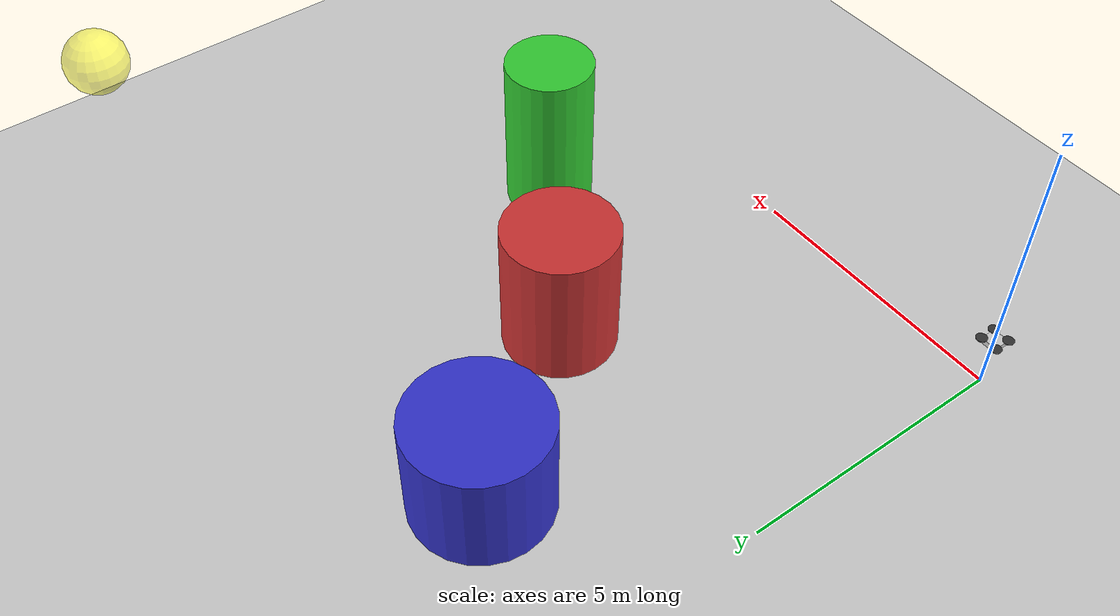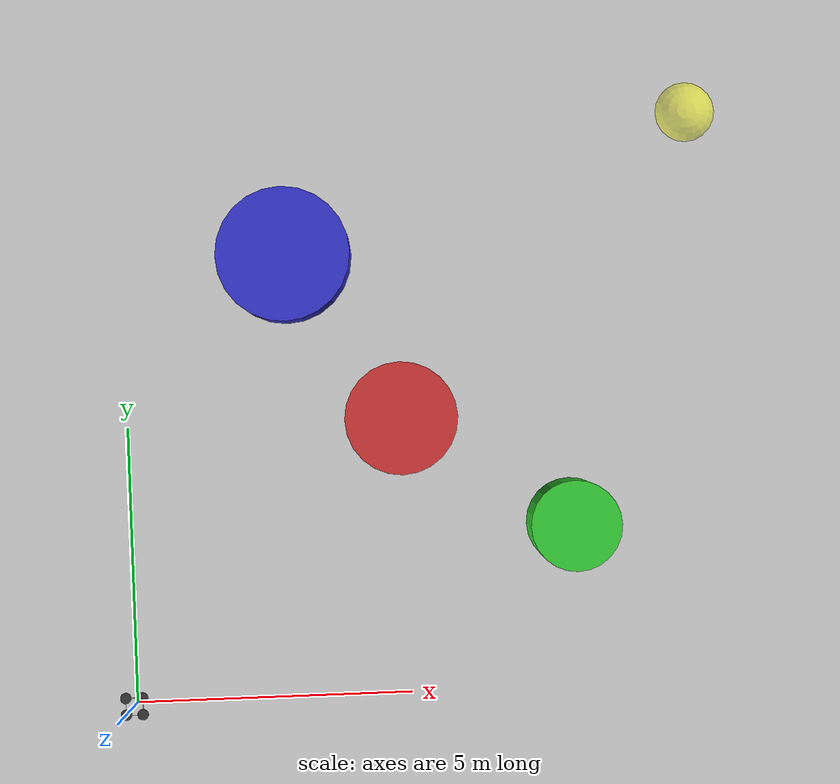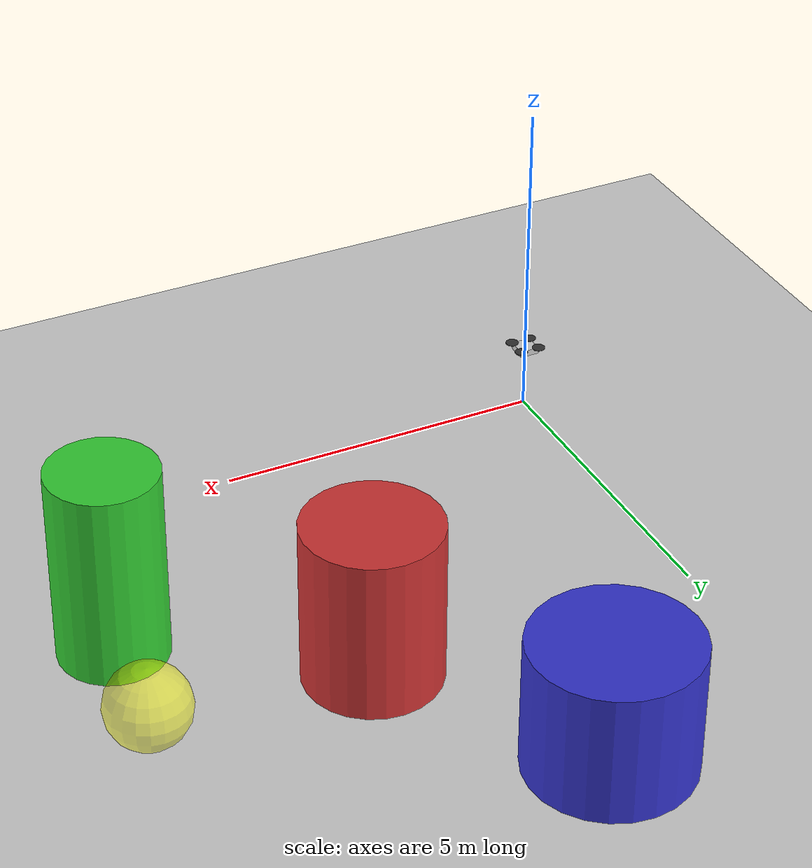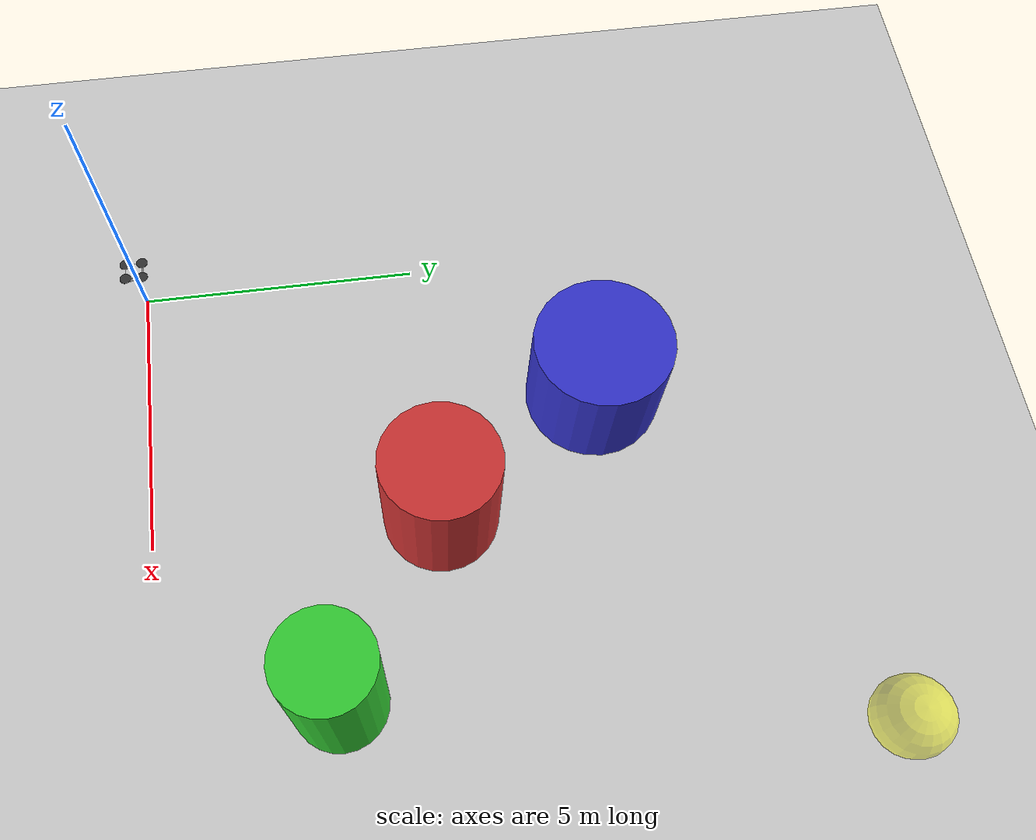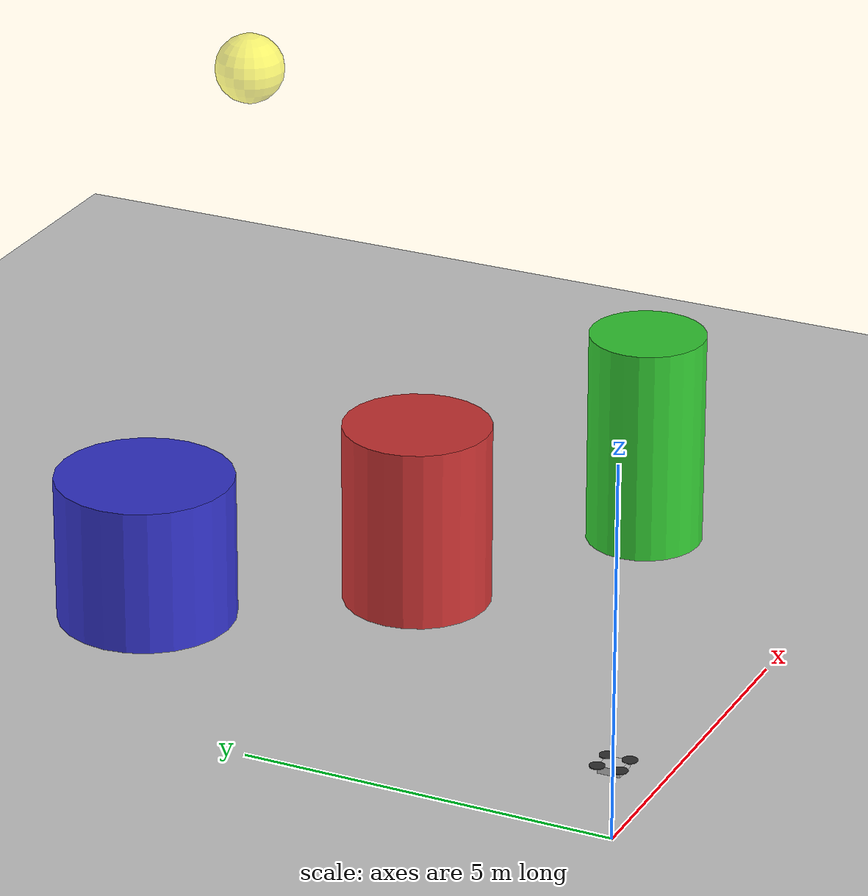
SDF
<?xml version="1.0" ?>
<sdf version="1.6">
  <world name="drone_arena">
    <!-- Physics -->
    <physics name="1ms" type="ignored">
      <max_step_size>0.001</max_step_size>
      <real_time_factor>1.0</real_time_factor>
    </physics>

    <!-- Scene -->
    <scene>
      <ambient>0.4 0.4 0.4 1</ambient>
      <background>0.7 0.7 0.7 1</background>
      <shadows>true</shadows>
    </scene>

    <!-- Ground Plane -->
    <model name="ground_plane">
      <static>true</static>
      <link name="link">
        <collision name="collision">
          <geometry>
            <plane>
              <normal>0 0 1</normal>
              <size>50 50</size>
            </plane>
          </geometry>
        </collision>
        <visual name="visual">
          <geometry>
            <plane>
              <normal>0 0 1</normal>
              <size>50 50</size>
            </plane>
          </geometry>
          <material>
            <ambient>0.8 0.8 0.8 1</ambient>
            <diffuse>0.8 0.8 0.8 1</diffuse>
          </material>
        </visual>
      </link>
    </model>

    <!-- Obstacle 1 -->
    <model name="obstacle_1">
      <pose>5 5 1.25 0 0 0</pose>
      <static>true</static>
      <link name="link">
        <collision name="collision">
          <geometry>
            <cylinder>
              <radius>1.0</radius>
              <length>2.5</length>
            </cylinder>
          </geometry>
        </collision>
        <visual name="visual">
          <geometry>
            <cylinder>
              <radius>1.0</radius>
              <length>2.5</length>
            </cylinder>
          </geometry>
          <material>
            <ambient>0.8 0.2 0.2 1</ambient>
            <diffuse>0.8 0.2 0.2 1</diffuse>
          </material>
        </visual>
      </link>
    </model>

    <!-- Obstacle 2 -->
    <model name="obstacle_2">
      <pose>8 3 1.5 0 0 0</pose>
      <static>true</static>
      <link name="link">
        <collision name="collision">
          <geometry>
            <cylinder>
              <radius>0.8</radius>
              <length>3.0</length>
            </cylinder>
          </geometry>
        </collision>
        <visual name="visual">
          <geometry>
            <cylinder>
              <radius>0.8</radius>
              <length>3.0</length>
            </cylinder>
          </geometry>
          <material>
            <ambient>0.2 0.8 0.2 1</ambient>
            <diffuse>0.2 0.8 0.2 1</diffuse>
          </material>
        </visual>
      </link>
    </model>

    <!-- Obstacle 3 -->
    <model name="obstacle_3">
      <pose>3 8 1.0 0 0 0</pose>
      <static>true</static>
      <link name="link">
        <collision name="collision">
          <geometry>
            <cylinder>
              <radius>1.2</radius>
              <length>2.0</length>
            </cylinder>
          </geometry>
        </collision>
        <visual name="visual">
          <geometry>
            <cylinder>
              <radius>1.2</radius>
              <length>2.0</length>
            </cylinder>
          </geometry>
          <material>
            <ambient>0.2 0.2 0.8 1</ambient>
            <diffuse>0.2 0.2 0.8 1</diffuse>
          </material>
        </visual>
      </link>
    </model>

    <!-- Target Point (Visual Marker) -->
    <model name="target_point">
      <pose>10 10 5 0 0 0</pose>
      <static>true</static>
      <link name="link">
        <visual name="visual">
          <geometry>
            <sphere>
              <radius>0.5</radius>
            </sphere>
          </geometry>
          <material>
            <ambient>1.0 1.0 0.0 0.5</ambient>
            <diffuse>1.0 1.0 0.0 0.5</diffuse>
            <transparency>0.5</transparency>
          </material>
        </visual>
      </link>
    </model>

    <!-- Include Quadrotor Model -->
    <include>
      <uri>model://quadrotor</uri>
      <pose>0 0 1 0 0 0</pose>
      <name>quadrotor</name>
    </include>

    <!-- Light -->
    <light type="directional" name="sun">
      <cast_shadows>true</cast_shadows>
      <pose>0 0 10 0 0 0</pose>
      <diffuse>0.8 0.8 0.8 1</diffuse>
      <specular>0.2 0.2 0.2 1</specular>
      <attenuation>
        <range>1000</range>
        <constant>0.9</constant>
        <linear>0.01</linear>
        <quadratic>0.001</quadratic>
      </attenuation>
      <direction>-0.5 0.1 -0.9</direction>
    </light>

    <!-- GUI Plugin -->
    <plugin filename="gz-sim-gui-system" name="gz::sim::systems::Gui">
    </plugin>

    <!-- Physics Plugin -->
    <plugin filename="gz-sim-physics-system" name="gz::sim::systems::Physics">
    </plugin>

    <!-- Scene Broadcaster Plugin -->
    <plugin filename="gz-sim-scene-broadcaster-system" name="gz::sim::systems::SceneBroadcaster">
    </plugin>

    <!-- User Commands Plugin -->
    <plugin filename="gz-sim-user-commands-system" name="gz::sim::systems::UserCommands">
    </plugin>

    <!-- Sensors Plugin -->
    <plugin filename="gz-sim-sensors-system" name="gz::sim::systems::Sensors">
      <render_engine>ogre2</render_engine>
    </plugin>
  </world>
</sdf>

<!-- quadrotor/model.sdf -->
<sdf version="1.6">
  <model name="quadrotor">
    <pose>0 0 0.1 0 0 0</pose>

    <!-- Base Link -->
    <link name="base_link">
      <pose>0 0 0 0 0 0</pose>
      <inertial>
        <mass>1.5</mass>
        <inertia>
          <ixx>0.029125</ixx>
          <iyy>0.029125</iyy>
          <izz>0.055225</izz>
        </inertia>
      </inertial>

      <collision name="base_link_collision">
        <geometry>
          <box>
            <size>0.3 0.3 0.1</size>
          </box>
        </geometry>
      </collision>

      <visual name="base_link_visual">
        <geometry>
          <box>
            <size>0.3 0.3 0.1</size>
          </box>
        </geometry>
        <material>
          <ambient>0.8 0.8 0.8 1</ambient>
          <diffuse>0.8 0.8 0.8 1</diffuse>
        </material>
      </visual>
    </link>

    <!-- Propeller 1 (Front Left) -->
    <link name="propeller_1">
      <pose>0.15 0.15 0.05 0 0 0</pose>
      <inertial>
        <mass>0.05</mass>
        <inertia>
          <ixx>0.0001</ixx>
          <iyy>0.0001</iyy>
          <izz>0.0001</izz>
        </inertia>
      </inertial>

      <visual name="propeller_1_visual">
        <geometry>
          <cylinder>
            <radius>0.1</radius>
            <length>0.01</length>
          </cylinder>
        </geometry>
        <material>
          <ambient>0.2 0.2 0.2 1</ambient>
        </material>
      </visual>
    </link>

    <joint name="propeller_1_joint" type="revolute">
      <parent>base_link</parent>
      <child>propeller_1</child>
      <axis>
        <xyz>0 0 1</xyz>
      </axis>
    </joint>

    <!-- Propeller 2 (Front Right) -->
    <link name="propeller_2">
      <pose>-0.15 0.15 0.05 0 0 0</pose>
      <inertial>
        <mass>0.05</mass>
        <inertia>
          <ixx>0.0001</ixx>
          <iyy>0.0001</iyy>
          <izz>0.0001</izz>
        </inertia>
      </inertial>

      <visual name="propeller_2_visual">
        <geometry>
          <cylinder>
            <radius>0.1</radius>
            <length>0.01</length>
          </cylinder>
        </geometry>
        <material>
          <ambient>0.2 0.2 0.2 1</ambient>
        </material>
      </visual>
    </link>

    <joint name="propeller_2_joint" type="revolute">
      <parent>base_link</parent>
      <child>propeller_2</child>
      <axis>
        <xyz>0 0 1</xyz>
      </axis>
    </joint>

    <!-- Propeller 3 (Back Left) -->
    <link name="propeller_3">
      <pose>0.15 -0.15 0.05 0 0 0</pose>
      <inertial>
        <mass>0.05</mass>
        <inertia>
          <ixx>0.0001</ixx>
          <iyy>0.0001</iyy>
          <izz>0.0001</izz>
        </inertia>
      </inertial>

      <visual name="propeller_3_visual">
        <geometry>
          <cylinder>
            <radius>0.1</radius>
            <length>0.01</length>
          </cylinder>
        </geometry>
        <material>
          <ambient>0.2 0.2 0.2 1</ambient>
        </material>
      </visual>
    </link>

    <joint name="propeller_3_joint" type="revolute">
      <parent>base_link</parent>
      <child>propeller_3</child>
      <axis>
        <xyz>0 0 1</xyz>
      </axis>
    </joint>

    <!-- Propeller 4 (Back Right) -->
    <link name="propeller_4">
      <pose>-0.15 -0.15 0.05 0 0 0</pose>
      <inertial>
        <mass>0.05</mass>
        <inertia>
          <ixx>0.0001</ixx>
          <iyy>0.0001</iyy>
          <izz>0.0001</izz>
        </inertia>
      </inertial>

      <visual name="propeller_4_visual">
        <geometry>
          <cylinder>
            <radius>0.1</radius>
            <length>0.01</length>
          </cylinder>
        </geometry>
        <material>
          <ambient>0.2 0.2 0.2 1</ambient>
        </material>
      </visual>
    </link>

    <joint name="propeller_4_joint" type="revolute">
      <parent>base_link</parent>
      <child>propeller_4</child>
      <axis>
        <xyz>0 0 1</xyz>
      </axis>
    </joint>

    <!-- Plugin untuk kontrol -->
    <plugin filename="gz-sim-thruster-system" name="gz::sim::systems::Thruster">
      <namespace>quadrotor</namespace>
    </plugin>

    <!-- Plugin untuk odometry -->
    <plugin filename="gz-sim-odometry-publisher-system" name="gz::sim::systems::OdometryPublisher">
      <odometry_frame>world</odometry_frame>
      <robot_base_frame>base_link</robot_base_frame>
      <publish_rate>50</publish_rate>
      <topic>odometry</topic>
    </plugin>

    <!-- Plugin untuk IMU -->
    <plugin filename="gz-sim-imu-system" name="gz::sim::systems::Imu">
      <topic>imu</topic>
      <update_rate>100</update_rate>
    </plugin>

    <!-- Plugin untuk command velocity -->
    <plugin filename="gz-sim-cmd-system" name="gz::sim::systems::CommandVelocity">
      <topic>cmd_vel</topic>
    </plugin>
  </model>
</sdf>
